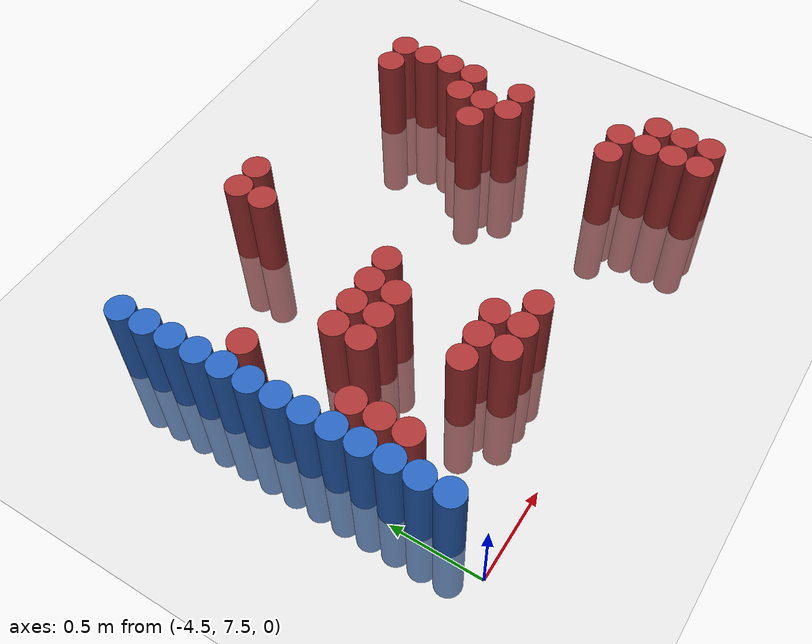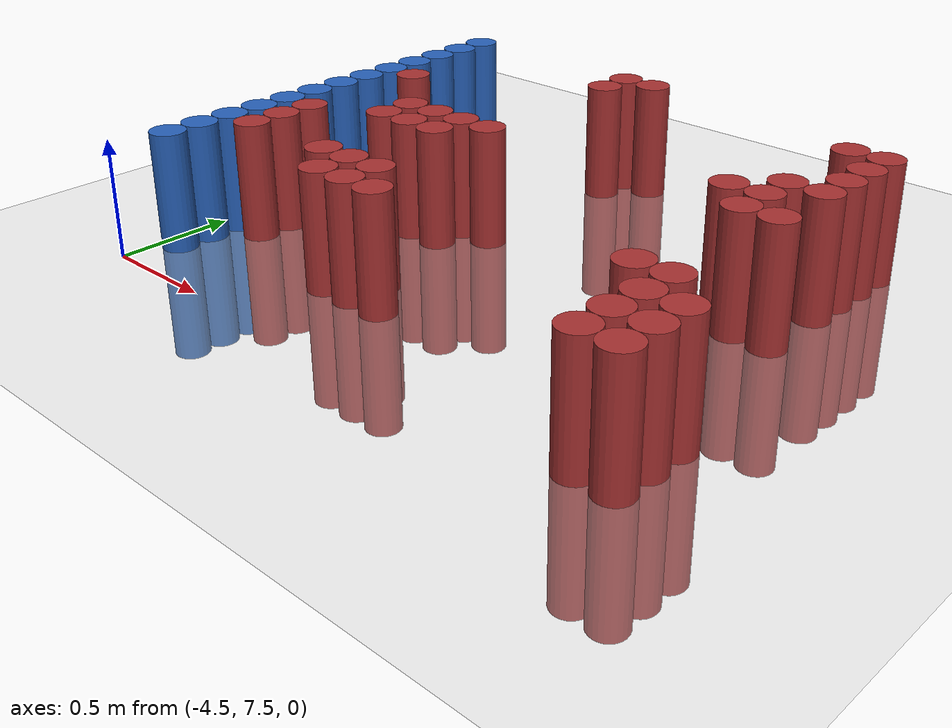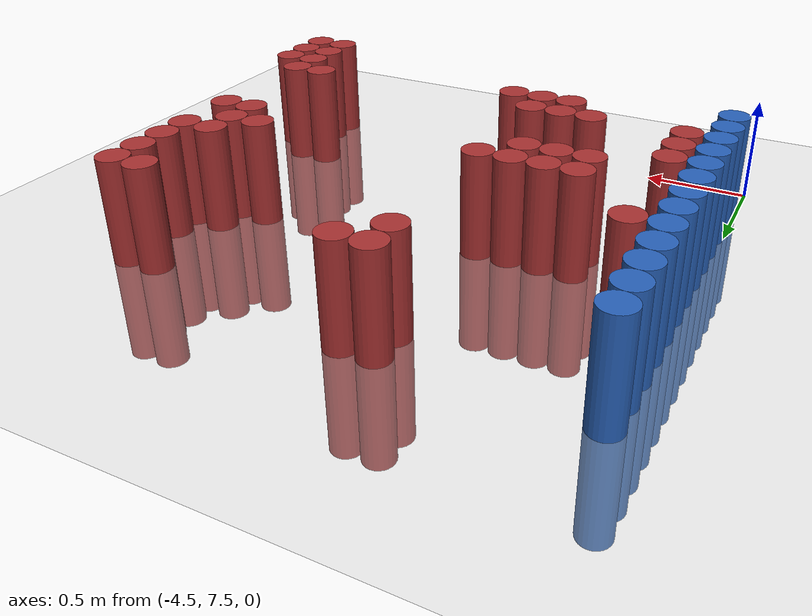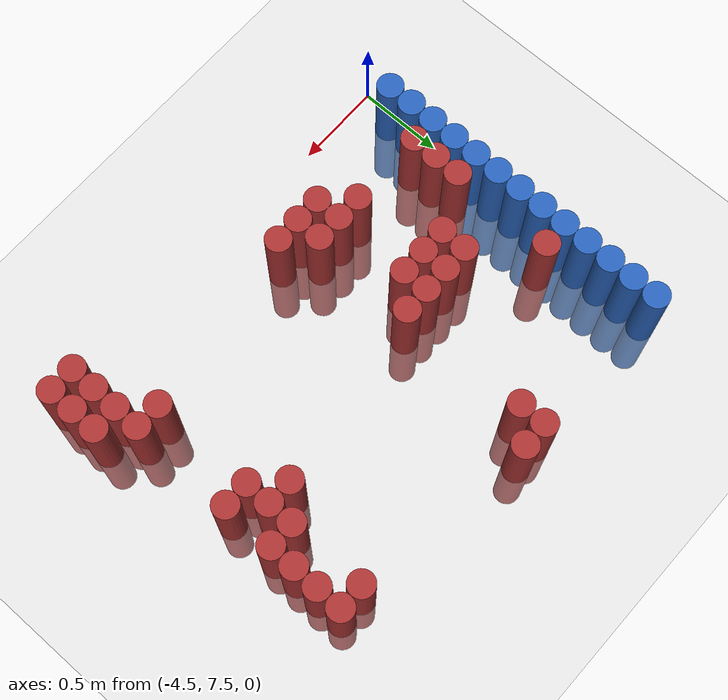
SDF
<sdf version="1.6">
 <world name="default">
  <model name="ground_plane">
   <static>1</static>
   <link name="link">
    <collision name="collision">
     <geometry><plane><normal>0 0 1</normal><size>100 100</size></plane></geometry>
     <surface><friction><ode><mu>100</mu><mu2>50</mu2></ode></friction></surface>
    </collision>
    <visual name="visual">
     <cast_shadows>0</cast_shadows>
     <geometry><plane><normal>0 0 1</normal><size>100 100</size></plane></geometry>
     <material>
      <script><uri>file://media/materials/scripts/gazebo.material</uri><name>Gazebo/Grey</name></script>
     </material>
    </visual>
   </link>
  </model>
  <model name="unit_cylinder_113">
   <static>1</static>
   <pose>-4.425000 7.725000 0.000000 0.000000 0.000000 0.000000</pose>
   <link name="link">
    <inertial>
     <mass>1</mass>
     <inertia><ixx>0.145833</ixx><ixy>0</ixy><ixz>0</ixz><iyy>0.145833</iyy><iyz>0</iyz><izz>0.125</izz></inertia>
    </inertial>
    <collision name="collision">
     <geometry><cylinder><radius>0.075000</radius><length>1</length></cylinder></geometry>
    </collision>
    <visual name="visual">
     <geometry><cylinder><radius>0.075000</radius><length>1</length></cylinder></geometry>
     <material>
      <ambient>0.152000 0.379000 0.720000 1</ambient>
      <diffuse>0.152000 0.379000 0.720000 1</diffuse>
     </material>
     <material>
      <script><name>Gazebo/Grey</name><uri>file://media/materials/scripts/gazebo.material</uri></script>
     </material>
    </visual>
   </link>
  </model>
  <model name="unit_cylinder_114">
   <static>1</static>
   <pose>-4.425000 7.875000 0.000000 0.000000 0.000000 0.000000</pose>
   <link name="link">
    <inertial>
     <mass>1</mass>
     <inertia><ixx>0.145833</ixx><ixy>0</ixy><ixz>0</ixz><iyy>0.145833</iyy><iyz>0</iyz><izz>0.125</izz></inertia>
    </inertial>
    <collision name="collision">
     <geometry><cylinder><radius>0.075000</radius><length>1</length></cylinder></geometry>
    </collision>
    <visual name="visual">
     <geometry><cylinder><radius>0.075000</radius><length>1</length></cylinder></geometry>
     <material>
      <ambient>0.152000 0.379000 0.720000 1</ambient>
      <diffuse>0.152000 0.379000 0.720000 1</diffuse>
     </material>
     <material>
      <script><name>Gazebo/Grey</name><uri>file://media/materials/scripts/gazebo.material</uri></script>
     </material>
    </visual>
   </link>
  </model>
  <model name="unit_cylinder_115">
   <static>1</static>
   <pose>-4.425000 8.025000 0.000000 0.000000 0.000000 0.000000</pose>
   <link name="link">
    <inertial>
     <mass>1</mass>
     <inertia><ixx>0.145833</ixx><ixy>0</ixy><ixz>0</ixz><iyy>0.145833</iyy><iyz>0</iyz><izz>0.125</izz></inertia>
    </inertial>
    <collision name="collision">
     <geometry><cylinder><radius>0.075000</radius><length>1</length></cylinder></geometry>
    </collision>
    <visual name="visual">
     <geometry><cylinder><radius>0.075000</radius><length>1</length></cylinder></geometry>
     <material>
      <ambient>0.152000 0.379000 0.720000 1</ambient>
      <diffuse>0.152000 0.379000 0.720000 1</diffuse>
     </material>
     <material>
      <script><name>Gazebo/Grey</name><uri>file://media/materials/scripts/gazebo.material</uri></script>
     </material>
    </visual>
   </link>
  </model>
  <model name="unit_cylinder_116">
   <static>1</static>
   <pose>-4.425000 8.175000 0.000000 0.000000 0.000000 0.000000</pose>
   <link name="link">
    <inertial>
     <mass>1</mass>
     <inertia><ixx>0.145833</ixx><ixy>0</ixy><ixz>0</ixz><iyy>0.145833</iyy><iyz>0</iyz><izz>0.125</izz></inertia>
    </inertial>
    <collision name="collision">
     <geometry><cylinder><radius>0.075000</radius><length>1</length></cylinder></geometry>
    </collision>
    <visual name="visual">
     <geometry><cylinder><radius>0.075000</radius><length>1</length></cylinder></geometry>
     <material>
      <ambient>0.152000 0.379000 0.720000 1</ambient>
      <diffuse>0.152000 0.379000 0.720000 1</diffuse>
     </material>
     <material>
      <script><name>Gazebo/Grey</name><uri>file://media/materials/scripts/gazebo.material</uri></script>
     </material>
    </visual>
   </link>
  </model>
  <model name="unit_cylinder_117">
   <static>1</static>
   <pose>-4.425000 8.325000 0.000000 0.000000 0.000000 0.000000</pose>
   <link name="link">
    <inertial>
     <mass>1</mass>
     <inertia><ixx>0.145833</ixx><ixy>0</ixy><ixz>0</ixz><iyy>0.145833</iyy><iyz>0</iyz><izz>0.125</izz></inertia>
    </inertial>
    <collision name="collision">
     <geometry><cylinder><radius>0.075000</radius><length>1</length></cylinder></geometry>
    </collision>
    <visual name="visual">
     <geometry><cylinder><radius>0.075000</radius><length>1</length></cylinder></geometry>
     <material>
      <ambient>0.152000 0.379000 0.720000 1</ambient>
      <diffuse>0.152000 0.379000 0.720000 1</diffuse>
     </material>
     <material>
      <script><name>Gazebo/Grey</name><uri>file://media/materials/scripts/gazebo.material</uri></script>
     </material>
    </visual>
   </link>
  </model>
  <model name="unit_cylinder_118">
   <static>1</static>
   <pose>-4.425000 8.475000 0.000000 0.000000 0.000000 0.000000</pose>
   <link name="link">
    <inertial>
     <mass>1</mass>
     <inertia><ixx>0.145833</ixx><ixy>0</ixy><ixz>0</ixz><iyy>0.145833</iyy><iyz>0</iyz><izz>0.125</izz></inertia>
    </inertial>
    <collision name="collision">
     <geometry><cylinder><radius>0.075000</radius><length>1</length></cylinder></geometry>
    </collision>
    <visual name="visual">
     <geometry><cylinder><radius>0.075000</radius><length>1</length></cylinder></geometry>
     <material>
      <ambient>0.152000 0.379000 0.720000 1</ambient>
      <diffuse>0.152000 0.379000 0.720000 1</diffuse>
     </material>
     <material>
      <script><name>Gazebo/Grey</name><uri>file://media/materials/scripts/gazebo.material</uri></script>
     </material>
    </visual>
   </link>
  </model>
  <model name="unit_cylinder_119">
   <static>1</static>
   <pose>-4.425000 8.625000 0.000000 0.000000 0.000000 0.000000</pose>
   <link name="link">
    <inertial>
     <mass>1</mass>
     <inertia><ixx>0.145833</ixx><ixy>0</ixy><ixz>0</ixz><iyy>0.145833</iyy><iyz>0</iyz><izz>0.125</izz></inertia>
    </inertial>
    <collision name="collision">
     <geometry><cylinder><radius>0.075000</radius><length>1</length></cylinder></geometry>
    </collision>
    <visual name="visual">
     <geometry><cylinder><radius>0.075000</radius><length>1</length></cylinder></geometry>
     <material>
      <ambient>0.152000 0.379000 0.720000 1</ambient>
      <diffuse>0.152000 0.379000 0.720000 1</diffuse>
     </material>
     <material>
      <script><name>Gazebo/Grey</name><uri>file://media/materials/scripts/gazebo.material</uri></script>
     </material>
    </visual>
   </link>
  </model>
  <model name="unit_cylinder_120">
   <static>1</static>
   <pose>-4.425000 8.775000 0.000000 0.000000 0.000000 0.000000</pose>
   <link name="link">
    <inertial>
     <mass>1</mass>
     <inertia><ixx>0.145833</ixx><ixy>0</ixy><ixz>0</ixz><iyy>0.145833</iyy><iyz>0</iyz><izz>0.125</izz></inertia>
    </inertial>
    <collision name="collision">
     <geometry><cylinder><radius>0.075000</radius><length>1</length></cylinder></geometry>
    </collision>
    <visual name="visual">
     <geometry><cylinder><radius>0.075000</radius><length>1</length></cylinder></geometry>
     <material>
      <ambient>0.152000 0.379000 0.720000 1</ambient>
      <diffuse>0.152000 0.379000 0.720000 1</diffuse>
     </material>
     <material>
      <script><name>Gazebo/Grey</name><uri>file://media/materials/scripts/gazebo.material</uri></script>
     </material>
    </visual>
   </link>
  </model>
  <model name="unit_cylinder_121">
   <static>1</static>
   <pose>-4.425000 8.925000 0.000000 0.000000 0.000000 0.000000</pose>
   <link name="link">
    <inertial>
     <mass>1</mass>
     <inertia><ixx>0.145833</ixx><ixy>0</ixy><ixz>0</ixz><iyy>0.145833</iyy><iyz>0</iyz><izz>0.125</izz></inertia>
    </inertial>
    <collision name="collision">
     <geometry><cylinder><radius>0.075000</radius><length>1</length></cylinder></geometry>
    </collision>
    <visual name="visual">
     <geometry><cylinder><radius>0.075000</radius><length>1</length></cylinder></geometry>
     <material>
      <ambient>0.152000 0.379000 0.720000 1</ambient>
      <diffuse>0.152000 0.379000 0.720000 1</diffuse>
     </material>
     <material>
      <script><name>Gazebo/Grey</name><uri>file://media/materials/scripts/gazebo.material</uri></script>
     </material>
    </visual>
   </link>
  </model>
  <model name="unit_cylinder_122">
   <static>1</static>
   <pose>-4.425000 9.075000 0.000000 0.000000 0.000000 0.000000</pose>
   <link name="link">
    <inertial>
     <mass>1</mass>
     <inertia><ixx>0.145833</ixx><ixy>0</ixy><ixz>0</ixz><iyy>0.145833</iyy><iyz>0</iyz><izz>0.125</izz></inertia>
    </inertial>
    <collision name="collision">
     <geometry><cylinder><radius>0.075000</radius><length>1</length></cylinder></geometry>
    </collision>
    <visual name="visual">
     <geometry><cylinder><radius>0.075000</radius><length>1</length></cylinder></geometry>
     <material>
      <ambient>0.152000 0.379000 0.720000 1</ambient>
      <diffuse>0.152000 0.379000 0.720000 1</diffuse>
     </material>
     <material>
      <script><name>Gazebo/Grey</name><uri>file://media/materials/scripts/gazebo.material</uri></script>
     </material>
    </visual>
   </link>
  </model>
  <model name="unit_cylinder_123">
   <static>1</static>
   <pose>-4.425000 9.225000 0.000000 0.000000 0.000000 0.000000</pose>
   <link name="link">
    <inertial>
     <mass>1</mass>
     <inertia><ixx>0.145833</ixx><ixy>0</ixy><ixz>0</ixz><iyy>0.145833</iyy><iyz>0</iyz><izz>0.125</izz></inertia>
    </inertial>
    <collision name="collision">
     <geometry><cylinder><radius>0.075000</radius><length>1</length></cylinder></geometry>
    </collision>
    <visual name="visual">
     <geometry><cylinder><radius>0.075000</radius><length>1</length></cylinder></geometry>
     <material>
      <ambient>0.152000 0.379000 0.720000 1</ambient>
      <diffuse>0.152000 0.379000 0.720000 1</diffuse>
     </material>
     <material>
      <script><name>Gazebo/Grey</name><uri>file://media/materials/scripts/gazebo.material</uri></script>
     </material>
    </visual>
   </link>
  </model>
  <model name="unit_cylinder_124">
   <static>1</static>
   <pose>-4.425000 9.375000 0.000000 0.000000 0.000000 0.000000</pose>
   <link name="link">
    <inertial>
     <mass>1</mass>
     <inertia><ixx>0.145833</ixx><ixy>0</ixy><ixz>0</ixz><iyy>0.145833</iyy><iyz>0</iyz><izz>0.125</izz></inertia>
    </inertial>
    <collision name="collision">
     <geometry><cylinder><radius>0.075000</radius><length>1</length></cylinder></geometry>
    </collision>
    <visual name="visual">
     <geometry><cylinder><radius>0.075000</radius><length>1</length></cylinder></geometry>
     <material>
      <ambient>0.152000 0.379000 0.720000 1</ambient>
      <diffuse>0.152000 0.379000 0.720000 1</diffuse>
     </material>
     <material>
      <script><name>Gazebo/Grey</name><uri>file://media/materials/scripts/gazebo.material</uri></script>
     </material>
    </visual>
   </link>
  </model>
  <model name="unit_cylinder_125">
   <static>1</static>
   <pose>-4.425000 9.525000 0.000000 0.000000 0.000000 0.000000</pose>
   <link name="link">
    <inertial>
     <mass>1</mass>
     <inertia><ixx>0.145833</ixx><ixy>0</ixy><ixz>0</ixz><iyy>0.145833</iyy><iyz>0</iyz><izz>0.125</izz></inertia>
    </inertial>
    <collision name="collision">
     <geometry><cylinder><radius>0.075000</radius><length>1</length></cylinder></geometry>
    </collision>
    <visual name="visual">
     <geometry><cylinder><radius>0.075000</radius><length>1</length></cylinder></geometry>
     <material>
      <ambient>0.152000 0.379000 0.720000 1</ambient>
      <diffuse>0.152000 0.379000 0.720000 1</diffuse>
     </material>
     <material>
      <script><name>Gazebo/Grey</name><uri>file://media/materials/scripts/gazebo.material</uri></script>
     </material>
    </visual>
   </link>
  </model>
  <model name="unit_cylinder_130">
   <static>1</static>
   <pose>-4.275000 8.025000 0.000000 0.000000 0.000000 0.000000</pose>
   <link name="link">
    <inertial>
     <mass>1</mass>
     <inertia><ixx>0.145833</ixx><ixy>0</ixy><ixz>0</ixz><iyy>0.145833</iyy><iyz>0</iyz><izz>0.125</izz></inertia>
    </inertial>
    <collision name="collision">
     <geometry><cylinder><radius>0.075000</radius><length>1</length></cylinder></geometry>
    </collision>
    <visual name="visual">
     <geometry><cylinder><radius>0.075000</radius><length>1</length></cylinder></geometry>
     <material>
      <ambient>0.648000 0.192000 0.192000 1</ambient>
      <diffuse>0.648000 0.192000 0.192000 1</diffuse>
     </material>
     <material>
      <script><name>Gazebo/Grey</name><uri>file://media/materials/scripts/gazebo.material</uri></script>
     </material>
    </visual>
   </link>
  </model>
  <model name="unit_cylinder_131">
   <static>1</static>
   <pose>-4.275000 8.175000 0.000000 0.000000 0.000000 0.000000</pose>
   <link name="link">
    <inertial>
     <mass>1</mass>
     <inertia><ixx>0.145833</ixx><ixy>0</ixy><ixz>0</ixz><iyy>0.145833</iyy><iyz>0</iyz><izz>0.125</izz></inertia>
    </inertial>
    <collision name="collision">
     <geometry><cylinder><radius>0.075000</radius><length>1</length></cylinder></geometry>
    </collision>
    <visual name="visual">
     <geometry><cylinder><radius>0.075000</radius><length>1</length></cylinder></geometry>
     <material>
      <ambient>0.648000 0.192000 0.192000 1</ambient>
      <diffuse>0.648000 0.192000 0.192000 1</diffuse>
     </material>
     <material>
      <script><name>Gazebo/Grey</name><uri>file://media/materials/scripts/gazebo.material</uri></script>
     </material>
    </visual>
   </link>
  </model>
  <model name="unit_cylinder_132">
   <static>1</static>
   <pose>-4.275000 8.325000 0.000000 0.000000 0.000000 0.000000</pose>
   <link name="link">
    <inertial>
     <mass>1</mass>
     <inertia><ixx>0.145833</ixx><ixy>0</ixy><ixz>0</ixz><iyy>0.145833</iyy><iyz>0</iyz><izz>0.125</izz></inertia>
    </inertial>
    <collision name="collision">
     <geometry><cylinder><radius>0.075000</radius><length>1</length></cylinder></geometry>
    </collision>
    <visual name="visual">
     <geometry><cylinder><radius>0.075000</radius><length>1</length></cylinder></geometry>
     <material>
      <ambient>0.648000 0.192000 0.192000 1</ambient>
      <diffuse>0.648000 0.192000 0.192000 1</diffuse>
     </material>
     <material>
      <script><name>Gazebo/Grey</name><uri>file://media/materials/scripts/gazebo.material</uri></script>
     </material>
    </visual>
   </link>
  </model>
  <model name="unit_cylinder_133">
   <static>1</static>
   <pose>-4.275000 8.925000 0.000000 0.000000 0.000000 0.000000</pose>
   <link name="link">
    <inertial>
     <mass>1</mass>
     <inertia><ixx>0.145833</ixx><ixy>0</ixy><ixz>0</ixz><iyy>0.145833</iyy><iyz>0</iyz><izz>0.125</izz></inertia>
    </inertial>
    <collision name="collision">
     <geometry><cylinder><radius>0.075000</radius><length>1</length></cylinder></geometry>
    </collision>
    <visual name="visual">
     <geometry><cylinder><radius>0.075000</radius><length>1</length></cylinder></geometry>
     <material>
      <ambient>0.648000 0.192000 0.192000 1</ambient>
      <diffuse>0.648000 0.192000 0.192000 1</diffuse>
     </material>
     <material>
      <script><name>Gazebo/Grey</name><uri>file://media/materials/scripts/gazebo.material</uri></script>
     </material>
    </visual>
   </link>
  </model>
  <model name="unit_cylinder_144">
   <static>1</static>
   <pose>-3.975000 8.475000 0.000000 0.000000 0.000000 0.000000</pose>
   <link name="link">
    <inertial>
     <mass>1</mass>
     <inertia><ixx>0.145833</ixx><ixy>0</ixy><ixz>0</ixz><iyy>0.145833</iyy><iyz>0</iyz><izz>0.125</izz></inertia>
    </inertial>
    <collision name="collision">
     <geometry><cylinder><radius>0.075000</radius><length>1</length></cylinder></geometry>
    </collision>
    <visual name="visual">
     <geometry><cylinder><radius>0.075000</radius><length>1</length></cylinder></geometry>
     <material>
      <ambient>0.648000 0.192000 0.192000 1</ambient>
      <diffuse>0.648000 0.192000 0.192000 1</diffuse>
     </material>
     <material>
      <script><name>Gazebo/Grey</name><uri>file://media/materials/scripts/gazebo.material</uri></script>
     </material>
    </visual>
   </link>
  </model>
  <model name="unit_cylinder_145">
   <static>1</static>
   <pose>-3.975000 8.625000 0.000000 0.000000 0.000000 0.000000</pose>
   <link name="link">
    <inertial>
     <mass>1</mass>
     <inertia><ixx>0.145833</ixx><ixy>0</ixy><ixz>0</ixz><iyy>0.145833</iyy><iyz>0</iyz><izz>0.125</izz></inertia>
    </inertial>
    <collision name="collision">
     <geometry><cylinder><radius>0.075000</radius><length>1</length></cylinder></geometry>
    </collision>
    <visual name="visual">
     <geometry><cylinder><radius>0.075000</radius><length>1</length></cylinder></geometry>
     <material>
      <ambient>0.648000 0.192000 0.192000 1</ambient>
      <diffuse>0.648000 0.192000 0.192000 1</diffuse>
     </material>
     <material>
      <script><name>Gazebo/Grey</name><uri>file://media/materials/scripts/gazebo.material</uri></script>
     </material>
    </visual>
   </link>
  </model>
  <model name="unit_cylinder_151">
   <static>1</static>
   <pose>-3.825000 8.025000 0.000000 0.000000 0.000000 0.000000</pose>
   <link name="link">
    <inertial>
     <mass>1</mass>
     <inertia><ixx>0.145833</ixx><ixy>0</ixy><ixz>0</ixz><iyy>0.145833</iyy><iyz>0</iyz><izz>0.125</izz></inertia>
    </inertial>
    <collision name="collision">
     <geometry><cylinder><radius>0.075000</radius><length>1</length></cylinder></geometry>
    </collision>
    <visual name="visual">
     <geometry><cylinder><radius>0.075000</radius><length>1</length></cylinder></geometry>
     <material>
      <ambient>0.648000 0.192000 0.192000 1</ambient>
      <diffuse>0.648000 0.192000 0.192000 1</diffuse>
     </material>
     <material>
      <script><name>Gazebo/Grey</name><uri>file://media/materials/scripts/gazebo.material</uri></script>
     </material>
    </visual>
   </link>
  </model>
  <model name="unit_cylinder_152">
   <static>1</static>
   <pose>-3.825000 8.475000 0.000000 0.000000 0.000000 0.000000</pose>
   <link name="link">
    <inertial>
     <mass>1</mass>
     <inertia><ixx>0.145833</ixx><ixy>0</ixy><ixz>0</ixz><iyy>0.145833</iyy><iyz>0</iyz><izz>0.125</izz></inertia>
    </inertial>
    <collision name="collision">
     <geometry><cylinder><radius>0.075000</radius><length>1</length></cylinder></geometry>
    </collision>
    <visual name="visual">
     <geometry><cylinder><radius>0.075000</radius><length>1</length></cylinder></geometry>
     <material>
      <ambient>0.648000 0.192000 0.192000 1</ambient>
      <diffuse>0.648000 0.192000 0.192000 1</diffuse>
     </material>
     <material>
      <script><name>Gazebo/Grey</name><uri>file://media/materials/scripts/gazebo.material</uri></script>
     </material>
    </visual>
   </link>
  </model>
  <model name="unit_cylinder_153">
   <static>1</static>
   <pose>-3.825000 8.625000 0.000000 0.000000 0.000000 0.000000</pose>
   <link name="link">
    <inertial>
     <mass>1</mass>
     <inertia><ixx>0.145833</ixx><ixy>0</ixy><ixz>0</ixz><iyy>0.145833</iyy><iyz>0</iyz><izz>0.125</izz></inertia>
    </inertial>
    <collision name="collision">
     <geometry><cylinder><radius>0.075000</radius><length>1</length></cylinder></geometry>
    </collision>
    <visual name="visual">
     <geometry><cylinder><radius>0.075000</radius><length>1</length></cylinder></geometry>
     <material>
      <ambient>0.648000 0.192000 0.192000 1</ambient>
      <diffuse>0.648000 0.192000 0.192000 1</diffuse>
     </material>
     <material>
      <script><name>Gazebo/Grey</name><uri>file://media/materials/scripts/gazebo.material</uri></script>
     </material>
    </visual>
   </link>
  </model>
  <model name="unit_cylinder_161">
   <static>1</static>
   <pose>-3.675000 7.875000 0.000000 0.000000 0.000000 0.000000</pose>
   <link name="link">
    <inertial>
     <mass>1</mass>
     <inertia><ixx>0.145833</ixx><ixy>0</ixy><ixz>0</ixz><iyy>0.145833</iyy><iyz>0</iyz><izz>0.125</izz></inertia>
    </inertial>
    <collision name="collision">
     <geometry><cylinder><radius>0.075000</radius><length>1</length></cylinder></geometry>
    </collision>
    <visual name="visual">
     <geometry><cylinder><radius>0.075000</radius><length>1</length></cylinder></geometry>
     <material>
      <ambient>0.648000 0.192000 0.192000 1</ambient>
      <diffuse>0.648000 0.192000 0.192000 1</diffuse>
     </material>
     <material>
      <script><name>Gazebo/Grey</name><uri>file://media/materials/scripts/gazebo.material</uri></script>
     </material>
    </visual>
   </link>
  </model>
  <model name="unit_cylinder_162">
   <static>1</static>
   <pose>-3.675000 8.025000 0.000000 0.000000 0.000000 0.000000</pose>
   <link name="link">
    <inertial>
     <mass>1</mass>
     <inertia><ixx>0.145833</ixx><ixy>0</ixy><ixz>0</ixz><iyy>0.145833</iyy><iyz>0</iyz><izz>0.125</izz></inertia>
    </inertial>
    <collision name="collision">
     <geometry><cylinder><radius>0.075000</radius><length>1</length></cylinder></geometry>
    </collision>
    <visual name="visual">
     <geometry><cylinder><radius>0.075000</radius><length>1</length></cylinder></geometry>
     <material>
      <ambient>0.648000 0.192000 0.192000 1</ambient>
      <diffuse>0.648000 0.192000 0.192000 1</diffuse>
     </material>
     <material>
      <script><name>Gazebo/Grey</name><uri>file://media/materials/scripts/gazebo.material</uri></script>
     </material>
    </visual>
   </link>
  </model>
  <model name="unit_cylinder_163">
   <static>1</static>
   <pose>-3.675000 8.475000 0.000000 0.000000 0.000000 0.000000</pose>
   <link name="link">
    <inertial>
     <mass>1</mass>
     <inertia><ixx>0.145833</ixx><ixy>0</ixy><ixz>0</ixz><iyy>0.145833</iyy><iyz>0</iyz><izz>0.125</izz></inertia>
    </inertial>
    <collision name="collision">
     <geometry><cylinder><radius>0.075000</radius><length>1</length></cylinder></geometry>
    </collision>
    <visual name="visual">
     <geometry><cylinder><radius>0.075000</radius><length>1</length></cylinder></geometry>
     <material>
      <ambient>0.648000 0.192000 0.192000 1</ambient>
      <diffuse>0.648000 0.192000 0.192000 1</diffuse>
     </material>
     <material>
      <script><name>Gazebo/Grey</name><uri>file://media/materials/scripts/gazebo.material</uri></script>
     </material>
    </visual>
   </link>
  </model>
  <model name="unit_cylinder_164">
   <static>1</static>
   <pose>-3.675000 8.625000 0.000000 0.000000 0.000000 0.000000</pose>
   <link name="link">
    <inertial>
     <mass>1</mass>
     <inertia><ixx>0.145833</ixx><ixy>0</ixy><ixz>0</ixz><iyy>0.145833</iyy><iyz>0</iyz><izz>0.125</izz></inertia>
    </inertial>
    <collision name="collision">
     <geometry><cylinder><radius>0.075000</radius><length>1</length></cylinder></geometry>
    </collision>
    <visual name="visual">
     <geometry><cylinder><radius>0.075000</radius><length>1</length></cylinder></geometry>
     <material>
      <ambient>0.648000 0.192000 0.192000 1</ambient>
      <diffuse>0.648000 0.192000 0.192000 1</diffuse>
     </material>
     <material>
      <script><name>Gazebo/Grey</name><uri>file://media/materials/scripts/gazebo.material</uri></script>
     </material>
    </visual>
   </link>
  </model>
  <model name="unit_cylinder_165">
   <static>1</static>
   <pose>-3.525000 7.875000 0.000000 0.000000 0.000000 0.000000</pose>
   <link name="link">
    <inertial>
     <mass>1</mass>
     <inertia><ixx>0.145833</ixx><ixy>0</ixy><ixz>0</ixz><iyy>0.145833</iyy><iyz>0</iyz><izz>0.125</izz></inertia>
    </inertial>
    <collision name="collision">
     <geometry><cylinder><radius>0.075000</radius><length>1</length></cylinder></geometry>
    </collision>
    <visual name="visual">
     <geometry><cylinder><radius>0.075000</radius><length>1</length></cylinder></geometry>
     <material>
      <ambient>0.648000 0.192000 0.192000 1</ambient>
      <diffuse>0.648000 0.192000 0.192000 1</diffuse>
     </material>
     <material>
      <script><name>Gazebo/Grey</name><uri>file://media/materials/scripts/gazebo.material</uri></script>
     </material>
    </visual>
   </link>
  </model>
  <model name="unit_cylinder_166">
   <static>1</static>
   <pose>-3.525000 8.025000 0.000000 0.000000 0.000000 0.000000</pose>
   <link name="link">
    <inertial>
     <mass>1</mass>
     <inertia><ixx>0.145833</ixx><ixy>0</ixy><ixz>0</ixz><iyy>0.145833</iyy><iyz>0</iyz><izz>0.125</izz></inertia>
    </inertial>
    <collision name="collision">
     <geometry><cylinder><radius>0.075000</radius><length>1</length></cylinder></geometry>
    </collision>
    <visual name="visual">
     <geometry><cylinder><radius>0.075000</radius><length>1</length></cylinder></geometry>
     <material>
      <ambient>0.648000 0.192000 0.192000 1</ambient>
      <diffuse>0.648000 0.192000 0.192000 1</diffuse>
     </material>
     <material>
      <script><name>Gazebo/Grey</name><uri>file://media/materials/scripts/gazebo.material</uri></script>
     </material>
    </visual>
   </link>
  </model>
  <model name="unit_cylinder_167">
   <static>1</static>
   <pose>-3.525000 8.625000 0.000000 0.000000 0.000000 0.000000</pose>
   <link name="link">
    <inertial>
     <mass>1</mass>
     <inertia><ixx>0.145833</ixx><ixy>0</ixy><ixz>0</ixz><iyy>0.145833</iyy><iyz>0</iyz><izz>0.125</izz></inertia>
    </inertial>
    <collision name="collision">
     <geometry><cylinder><radius>0.075000</radius><length>1</length></cylinder></geometry>
    </collision>
    <visual name="visual">
     <geometry><cylinder><radius>0.075000</radius><length>1</length></cylinder></geometry>
     <material>
      <ambient>0.648000 0.192000 0.192000 1</ambient>
      <diffuse>0.648000 0.192000 0.192000 1</diffuse>
     </material>
     <material>
      <script><name>Gazebo/Grey</name><uri>file://media/materials/scripts/gazebo.material</uri></script>
     </material>
    </visual>
   </link>
  </model>
  <model name="unit_cylinder_168">
   <static>1</static>
   <pose>-3.525000 9.375000 0.000000 0.000000 0.000000 0.000000</pose>
   <link name="link">
    <inertial>
     <mass>1</mass>
     <inertia><ixx>0.145833</ixx><ixy>0</ixy><ixz>0</ixz><iyy>0.145833</iyy><iyz>0</iyz><izz>0.125</izz></inertia>
    </inertial>
    <collision name="collision">
     <geometry><cylinder><radius>0.075000</radius><length>1</length></cylinder></geometry>
    </collision>
    <visual name="visual">
     <geometry><cylinder><radius>0.075000</radius><length>1</length></cylinder></geometry>
     <material>
      <ambient>0.648000 0.192000 0.192000 1</ambient>
      <diffuse>0.648000 0.192000 0.192000 1</diffuse>
     </material>
     <material>
      <script><name>Gazebo/Grey</name><uri>file://media/materials/scripts/gazebo.material</uri></script>
     </material>
    </visual>
   </link>
  </model>
  <model name="unit_cylinder_169">
   <static>1</static>
   <pose>-3.525000 9.525000 0.000000 0.000000 0.000000 0.000000</pose>
   <link name="link">
    <inertial>
     <mass>1</mass>
     <inertia><ixx>0.145833</ixx><ixy>0</ixy><ixz>0</ixz><iyy>0.145833</iyy><iyz>0</iyz><izz>0.125</izz></inertia>
    </inertial>
    <collision name="collision">
     <geometry><cylinder><radius>0.075000</radius><length>1</length></cylinder></geometry>
    </collision>
    <visual name="visual">
     <geometry><cylinder><radius>0.075000</radius><length>1</length></cylinder></geometry>
     <material>
      <ambient>0.648000 0.192000 0.192000 1</ambient>
      <diffuse>0.648000 0.192000 0.192000 1</diffuse>
     </material>
     <material>
      <script><name>Gazebo/Grey</name><uri>file://media/materials/scripts/gazebo.material</uri></script>
     </material>
    </visual>
   </link>
  </model>
  <model name="unit_cylinder_170">
   <static>1</static>
   <pose>-3.375000 7.875000 0.000000 0.000000 0.000000 0.000000</pose>
   <link name="link">
    <inertial>
     <mass>1</mass>
     <inertia><ixx>0.145833</ixx><ixy>0</ixy><ixz>0</ixz><iyy>0.145833</iyy><iyz>0</iyz><izz>0.125</izz></inertia>
    </inertial>
    <collision name="collision">
     <geometry><cylinder><radius>0.075000</radius><length>1</length></cylinder></geometry>
    </collision>
    <visual name="visual">
     <geometry><cylinder><radius>0.075000</radius><length>1</length></cylinder></geometry>
     <material>
      <ambient>0.648000 0.192000 0.192000 1</ambient>
      <diffuse>0.648000 0.192000 0.192000 1</diffuse>
     </material>
     <material>
      <script><name>Gazebo/Grey</name><uri>file://media/materials/scripts/gazebo.material</uri></script>
     </material>
    </visual>
   </link>
  </model>
  <model name="unit_cylinder_171">
   <static>1</static>
   <pose>-3.375000 9.525000 0.000000 0.000000 0.000000 0.000000</pose>
   <link name="link">
    <inertial>
     <mass>1</mass>
     <inertia><ixx>0.145833</ixx><ixy>0</ixy><ixz>0</ixz><iyy>0.145833</iyy><iyz>0</iyz><izz>0.125</izz></inertia>
    </inertial>
    <collision name="collision">
     <geometry><cylinder><radius>0.075000</radius><length>1</length></cylinder></geometry>
    </collision>
    <visual name="visual">
     <geometry><cylinder><radius>0.075000</radius><length>1</length></cylinder></geometry>
     <material>
      <ambient>0.648000 0.192000 0.192000 1</ambient>
      <diffuse>0.648000 0.192000 0.192000 1</diffuse>
     </material>
     <material>
      <script><name>Gazebo/Grey</name><uri>file://media/materials/scripts/gazebo.material</uri></script>
     </material>
    </visual>
   </link>
  </model>
  <model name="unit_cylinder_185">
   <static>1</static>
   <pose>-2.475000 8.775000 0.000000 0.000000 0.000000 0.000000</pose>
   <link name="link">
    <inertial>
     <mass>1</mass>
     <inertia><ixx>0.145833</ixx><ixy>0</ixy><ixz>0</ixz><iyy>0.145833</iyy><iyz>0</iyz><izz>0.125</izz></inertia>
    </inertial>
    <collision name="collision">
     <geometry><cylinder><radius>0.075000</radius><length>1</length></cylinder></geometry>
    </collision>
    <visual name="visual">
     <geometry><cylinder><radius>0.075000</radius><length>1</length></cylinder></geometry>
     <material>
      <ambient>0.648000 0.192000 0.192000 1</ambient>
      <diffuse>0.648000 0.192000 0.192000 1</diffuse>
     </material>
     <material>
      <script><name>Gazebo/Grey</name><uri>file://media/materials/scripts/gazebo.material</uri></script>
     </material>
    </visual>
   </link>
  </model>
  <model name="unit_cylinder_196">
   <static>1</static>
   <pose>-2.325000 8.025000 0.000000 0.000000 0.000000 0.000000</pose>
   <link name="link">
    <inertial>
     <mass>1</mass>
     <inertia><ixx>0.145833</ixx><ixy>0</ixy><ixz>0</ixz><iyy>0.145833</iyy><iyz>0</iyz><izz>0.125</izz></inertia>
    </inertial>
    <collision name="collision">
     <geometry><cylinder><radius>0.075000</radius><length>1</length></cylinder></geometry>
    </collision>
    <visual name="visual">
     <geometry><cylinder><radius>0.075000</radius><length>1</length></cylinder></geometry>
     <material>
      <ambient>0.648000 0.192000 0.192000 1</ambient>
      <diffuse>0.648000 0.192000 0.192000 1</diffuse>
     </material>
     <material>
      <script><name>Gazebo/Grey</name><uri>file://media/materials/scripts/gazebo.material</uri></script>
     </material>
    </visual>
   </link>
  </model>
  <model name="unit_cylinder_197">
   <static>1</static>
   <pose>-2.325000 8.625000 0.000000 0.000000 0.000000 0.000000</pose>
   <link name="link">
    <inertial>
     <mass>1</mass>
     <inertia><ixx>0.145833</ixx><ixy>0</ixy><ixz>0</ixz><iyy>0.145833</iyy><iyz>0</iyz><izz>0.125</izz></inertia>
    </inertial>
    <collision name="collision">
     <geometry><cylinder><radius>0.075000</radius><length>1</length></cylinder></geometry>
    </collision>
    <visual name="visual">
     <geometry><cylinder><radius>0.075000</radius><length>1</length></cylinder></geometry>
     <material>
      <ambient>0.648000 0.192000 0.192000 1</ambient>
      <diffuse>0.648000 0.192000 0.192000 1</diffuse>
     </material>
     <material>
      <script><name>Gazebo/Grey</name><uri>file://media/materials/scripts/gazebo.material</uri></script>
     </material>
    </visual>
   </link>
  </model>
  <model name="unit_cylinder_198">
   <static>1</static>
   <pose>-2.325000 8.775000 0.000000 0.000000 0.000000 0.000000</pose>
   <link name="link">
    <inertial>
     <mass>1</mass>
     <inertia><ixx>0.145833</ixx><ixy>0</ixy><ixz>0</ixz><iyy>0.145833</iyy><iyz>0</iyz><izz>0.125</izz></inertia>
    </inertial>
    <collision name="collision">
     <geometry><cylinder><radius>0.075000</radius><length>1</length></cylinder></geometry>
    </collision>
    <visual name="visual">
     <geometry><cylinder><radius>0.075000</radius><length>1</length></cylinder></geometry>
     <material>
      <ambient>0.648000 0.192000 0.192000 1</ambient>
      <diffuse>0.648000 0.192000 0.192000 1</diffuse>
     </material>
     <material>
      <script><name>Gazebo/Grey</name><uri>file://media/materials/scripts/gazebo.material</uri></script>
     </material>
    </visual>
   </link>
  </model>
  <model name="unit_cylinder_199">
   <static>1</static>
   <pose>-2.325000 8.925000 0.000000 0.000000 0.000000 0.000000</pose>
   <link name="link">
    <inertial>
     <mass>1</mass>
     <inertia><ixx>0.145833</ixx><ixy>0</ixy><ixz>0</ixz><iyy>0.145833</iyy><iyz>0</iyz><izz>0.125</izz></inertia>
    </inertial>
    <collision name="collision">
     <geometry><cylinder><radius>0.075000</radius><length>1</length></cylinder></geometry>
    </collision>
    <visual name="visual">
     <geometry><cylinder><radius>0.075000</radius><length>1</length></cylinder></geometry>
     <material>
      <ambient>0.648000 0.192000 0.192000 1</ambient>
      <diffuse>0.648000 0.192000 0.192000 1</diffuse>
     </material>
     <material>
      <script><name>Gazebo/Grey</name><uri>file://media/materials/scripts/gazebo.material</uri></script>
     </material>
    </visual>
   </link>
  </model>
  <model name="unit_cylinder_200">
   <static>1</static>
   <pose>-2.325000 9.375000 0.000000 0.000000 0.000000 0.000000</pose>
   <link name="link">
    <inertial>
     <mass>1</mass>
     <inertia><ixx>0.145833</ixx><ixy>0</ixy><ixz>0</ixz><iyy>0.145833</iyy><iyz>0</iyz><izz>0.125</izz></inertia>
    </inertial>
    <collision name="collision">
     <geometry><cylinder><radius>0.075000</radius><length>1</length></cylinder></geometry>
    </collision>
    <visual name="visual">
     <geometry><cylinder><radius>0.075000</radius><length>1</length></cylinder></geometry>
     <material>
      <ambient>0.648000 0.192000 0.192000 1</ambient>
      <diffuse>0.648000 0.192000 0.192000 1</diffuse>
     </material>
     <material>
      <script><name>Gazebo/Grey</name><uri>file://media/materials/scripts/gazebo.material</uri></script>
     </material>
    </visual>
   </link>
  </model>
  <model name="unit_cylinder_207">
   <static>1</static>
   <pose>-2.175000 7.575000 0.000000 0.000000 0.000000 0.000000</pose>
   <link name="link">
    <inertial>
     <mass>1</mass>
     <inertia><ixx>0.145833</ixx><ixy>0</ixy><ixz>0</ixz><iyy>0.145833</iyy><iyz>0</iyz><izz>0.125</izz></inertia>
    </inertial>
    <collision name="collision">
     <geometry><cylinder><radius>0.075000</radius><length>1</length></cylinder></geometry>
    </collision>
    <visual name="visual">
     <geometry><cylinder><radius>0.075000</radius><length>1</length></cylinder></geometry>
     <material>
      <ambient>0.648000 0.192000 0.192000 1</ambient>
      <diffuse>0.648000 0.192000 0.192000 1</diffuse>
     </material>
     <material>
      <script><name>Gazebo/Grey</name><uri>file://media/materials/scripts/gazebo.material</uri></script>
     </material>
    </visual>
   </link>
  </model>
  <model name="unit_cylinder_208">
   <static>1</static>
   <pose>-2.175000 7.725000 0.000000 0.000000 0.000000 0.000000</pose>
   <link name="link">
    <inertial>
     <mass>1</mass>
     <inertia><ixx>0.145833</ixx><ixy>0</ixy><ixz>0</ixz><iyy>0.145833</iyy><iyz>0</iyz><izz>0.125</izz></inertia>
    </inertial>
    <collision name="collision">
     <geometry><cylinder><radius>0.075000</radius><length>1</length></cylinder></geometry>
    </collision>
    <visual name="visual">
     <geometry><cylinder><radius>0.075000</radius><length>1</length></cylinder></geometry>
     <material>
      <ambient>0.648000 0.192000 0.192000 1</ambient>
      <diffuse>0.648000 0.192000 0.192000 1</diffuse>
     </material>
     <material>
      <script><name>Gazebo/Grey</name><uri>file://media/materials/scripts/gazebo.material</uri></script>
     </material>
    </visual>
   </link>
  </model>
  <model name="unit_cylinder_209">
   <static>1</static>
   <pose>-2.175000 7.875000 0.000000 0.000000 0.000000 0.000000</pose>
   <link name="link">
    <inertial>
     <mass>1</mass>
     <inertia><ixx>0.145833</ixx><ixy>0</ixy><ixz>0</ixz><iyy>0.145833</iyy><iyz>0</iyz><izz>0.125</izz></inertia>
    </inertial>
    <collision name="collision">
     <geometry><cylinder><radius>0.075000</radius><length>1</length></cylinder></geometry>
    </collision>
    <visual name="visual">
     <geometry><cylinder><radius>0.075000</radius><length>1</length></cylinder></geometry>
     <material>
      <ambient>0.648000 0.192000 0.192000 1</ambient>
      <diffuse>0.648000 0.192000 0.192000 1</diffuse>
     </material>
     <material>
      <script><name>Gazebo/Grey</name><uri>file://media/materials/scripts/gazebo.material</uri></script>
     </material>
    </visual>
   </link>
  </model>
  <model name="unit_cylinder_210">
   <static>1</static>
   <pose>-2.175000 8.025000 0.000000 0.000000 0.000000 0.000000</pose>
   <link name="link">
    <inertial>
     <mass>1</mass>
     <inertia><ixx>0.145833</ixx><ixy>0</ixy><ixz>0</ixz><iyy>0.145833</iyy><iyz>0</iyz><izz>0.125</izz></inertia>
    </inertial>
    <collision name="collision">
     <geometry><cylinder><radius>0.075000</radius><length>1</length></cylinder></geometry>
    </collision>
    <visual name="visual">
     <geometry><cylinder><radius>0.075000</radius><length>1</length></cylinder></geometry>
     <material>
      <ambient>0.648000 0.192000 0.192000 1</ambient>
      <diffuse>0.648000 0.192000 0.192000 1</diffuse>
     </material>
     <material>
      <script><name>Gazebo/Grey</name><uri>file://media/materials/scripts/gazebo.material</uri></script>
     </material>
    </visual>
   </link>
  </model>
  <model name="unit_cylinder_211">
   <static>1</static>
   <pose>-2.175000 8.625000 0.000000 0.000000 0.000000 0.000000</pose>
   <link name="link">
    <inertial>
     <mass>1</mass>
     <inertia><ixx>0.145833</ixx><ixy>0</ixy><ixz>0</ixz><iyy>0.145833</iyy><iyz>0</iyz><izz>0.125</izz></inertia>
    </inertial>
    <collision name="collision">
     <geometry><cylinder><radius>0.075000</radius><length>1</length></cylinder></geometry>
    </collision>
    <visual name="visual">
     <geometry><cylinder><radius>0.075000</radius><length>1</length></cylinder></geometry>
     <material>
      <ambient>0.648000 0.192000 0.192000 1</ambient>
      <diffuse>0.648000 0.192000 0.192000 1</diffuse>
     </material>
     <material>
      <script><name>Gazebo/Grey</name><uri>file://media/materials/scripts/gazebo.material</uri></script>
     </material>
    </visual>
   </link>
  </model>
  <model name="unit_cylinder_212">
   <static>1</static>
   <pose>-2.175000 8.925000 0.000000 0.000000 0.000000 0.000000</pose>
   <link name="link">
    <inertial>
     <mass>1</mass>
     <inertia><ixx>0.145833</ixx><ixy>0</ixy><ixz>0</ixz><iyy>0.145833</iyy><iyz>0</iyz><izz>0.125</izz></inertia>
    </inertial>
    <collision name="collision">
     <geometry><cylinder><radius>0.075000</radius><length>1</length></cylinder></geometry>
    </collision>
    <visual name="visual">
     <geometry><cylinder><radius>0.075000</radius><length>1</length></cylinder></geometry>
     <material>
      <ambient>0.648000 0.192000 0.192000 1</ambient>
      <diffuse>0.648000 0.192000 0.192000 1</diffuse>
     </material>
     <material>
      <script><name>Gazebo/Grey</name><uri>file://media/materials/scripts/gazebo.material</uri></script>
     </material>
    </visual>
   </link>
  </model>
  <model name="unit_cylinder_213">
   <static>1</static>
   <pose>-2.175000 9.075000 0.000000 0.000000 0.000000 0.000000</pose>
   <link name="link">
    <inertial>
     <mass>1</mass>
     <inertia><ixx>0.145833</ixx><ixy>0</ixy><ixz>0</ixz><iyy>0.145833</iyy><iyz>0</iyz><izz>0.125</izz></inertia>
    </inertial>
    <collision name="collision">
     <geometry><cylinder><radius>0.075000</radius><length>1</length></cylinder></geometry>
    </collision>
    <visual name="visual">
     <geometry><cylinder><radius>0.075000</radius><length>1</length></cylinder></geometry>
     <material>
      <ambient>0.648000 0.192000 0.192000 1</ambient>
      <diffuse>0.648000 0.192000 0.192000 1</diffuse>
     </material>
     <material>
      <script><name>Gazebo/Grey</name><uri>file://media/materials/scripts/gazebo.material</uri></script>
     </material>
    </visual>
   </link>
  </model>
  <model name="unit_cylinder_214">
   <static>1</static>
   <pose>-2.175000 9.225000 0.000000 0.000000 0.000000 0.000000</pose>
   <link name="link">
    <inertial>
     <mass>1</mass>
     <inertia><ixx>0.145833</ixx><ixy>0</ixy><ixz>0</ixz><iyy>0.145833</iyy><iyz>0</iyz><izz>0.125</izz></inertia>
    </inertial>
    <collision name="collision">
     <geometry><cylinder><radius>0.075000</radius><length>1</length></cylinder></geometry>
    </collision>
    <visual name="visual">
     <geometry><cylinder><radius>0.075000</radius><length>1</length></cylinder></geometry>
     <material>
      <ambient>0.648000 0.192000 0.192000 1</ambient>
      <diffuse>0.648000 0.192000 0.192000 1</diffuse>
     </material>
     <material>
      <script><name>Gazebo/Grey</name><uri>file://media/materials/scripts/gazebo.material</uri></script>
     </material>
    </visual>
   </link>
  </model>
  <model name="unit_cylinder_215">
   <static>1</static>
   <pose>-2.175000 9.375000 0.000000 0.000000 0.000000 0.000000</pose>
   <link name="link">
    <inertial>
     <mass>1</mass>
     <inertia><ixx>0.145833</ixx><ixy>0</ixy><ixz>0</ixz><iyy>0.145833</iyy><iyz>0</iyz><izz>0.125</izz></inertia>
    </inertial>
    <collision name="collision">
     <geometry><cylinder><radius>0.075000</radius><length>1</length></cylinder></geometry>
    </collision>
    <visual name="visual">
     <geometry><cylinder><radius>0.075000</radius><length>1</length></cylinder></geometry>
     <material>
      <ambient>0.648000 0.192000 0.192000 1</ambient>
      <diffuse>0.648000 0.192000 0.192000 1</diffuse>
     </material>
     <material>
      <script><name>Gazebo/Grey</name><uri>file://media/materials/scripts/gazebo.material</uri></script>
     </material>
    </visual>
   </link>
  </model>
  <model name="unit_cylinder_223">
   <static>1</static>
   <pose>-2.025000 7.575000 0.000000 0.000000 0.000000 0.000000</pose>
   <link name="link">
    <inertial>
     <mass>1</mass>
     <inertia><ixx>0.145833</ixx><ixy>0</ixy><ixz>0</ixz><iyy>0.145833</iyy><iyz>0</iyz><izz>0.125</izz></inertia>
    </inertial>
    <collision name="collision">
     <geometry><cylinder><radius>0.075000</radius><length>1</length></cylinder></geometry>
    </collision>
    <visual name="visual">
     <geometry><cylinder><radius>0.075000</radius><length>1</length></cylinder></geometry>
     <material>
      <ambient>0.648000 0.192000 0.192000 1</ambient>
      <diffuse>0.648000 0.192000 0.192000 1</diffuse>
     </material>
     <material>
      <script><name>Gazebo/Grey</name><uri>file://media/materials/scripts/gazebo.material</uri></script>
     </material>
    </visual>
   </link>
  </model>
  <model name="unit_cylinder_224">
   <static>1</static>
   <pose>-2.025000 7.725000 0.000000 0.000000 0.000000 0.000000</pose>
   <link name="link">
    <inertial>
     <mass>1</mass>
     <inertia><ixx>0.145833</ixx><ixy>0</ixy><ixz>0</ixz><iyy>0.145833</iyy><iyz>0</iyz><izz>0.125</izz></inertia>
    </inertial>
    <collision name="collision">
     <geometry><cylinder><radius>0.075000</radius><length>1</length></cylinder></geometry>
    </collision>
    <visual name="visual">
     <geometry><cylinder><radius>0.075000</radius><length>1</length></cylinder></geometry>
     <material>
      <ambient>0.648000 0.192000 0.192000 1</ambient>
      <diffuse>0.648000 0.192000 0.192000 1</diffuse>
     </material>
     <material>
      <script><name>Gazebo/Grey</name><uri>file://media/materials/scripts/gazebo.material</uri></script>
     </material>
    </visual>
   </link>
  </model>
  <model name="unit_cylinder_225">
   <static>1</static>
   <pose>-2.025000 7.875000 0.000000 0.000000 0.000000 0.000000</pose>
   <link name="link">
    <inertial>
     <mass>1</mass>
     <inertia><ixx>0.145833</ixx><ixy>0</ixy><ixz>0</ixz><iyy>0.145833</iyy><iyz>0</iyz><izz>0.125</izz></inertia>
    </inertial>
    <collision name="collision">
     <geometry><cylinder><radius>0.075000</radius><length>1</length></cylinder></geometry>
    </collision>
    <visual name="visual">
     <geometry><cylinder><radius>0.075000</radius><length>1</length></cylinder></geometry>
     <material>
      <ambient>0.648000 0.192000 0.192000 1</ambient>
      <diffuse>0.648000 0.192000 0.192000 1</diffuse>
     </material>
     <material>
      <script><name>Gazebo/Grey</name><uri>file://media/materials/scripts/gazebo.material</uri></script>
     </material>
    </visual>
   </link>
  </model>
 </world>
</sdf>
